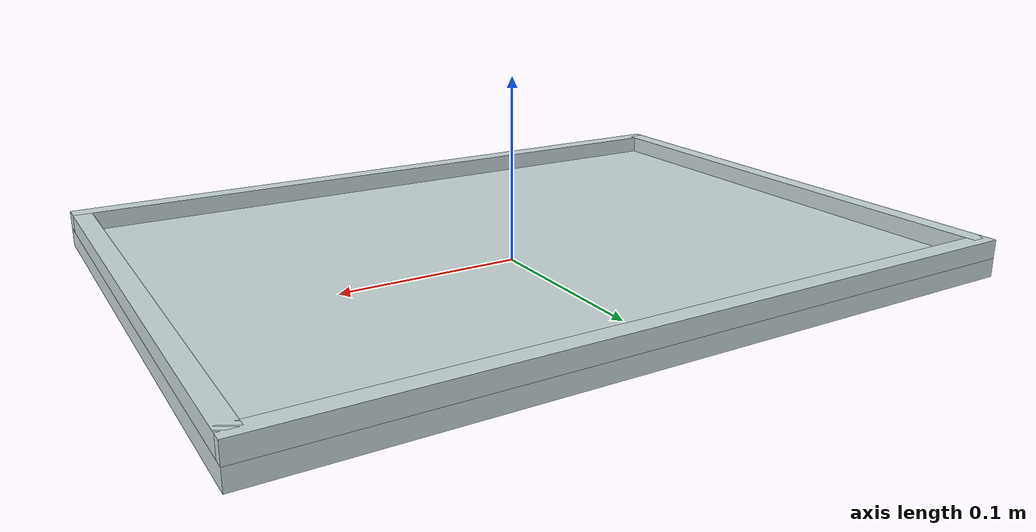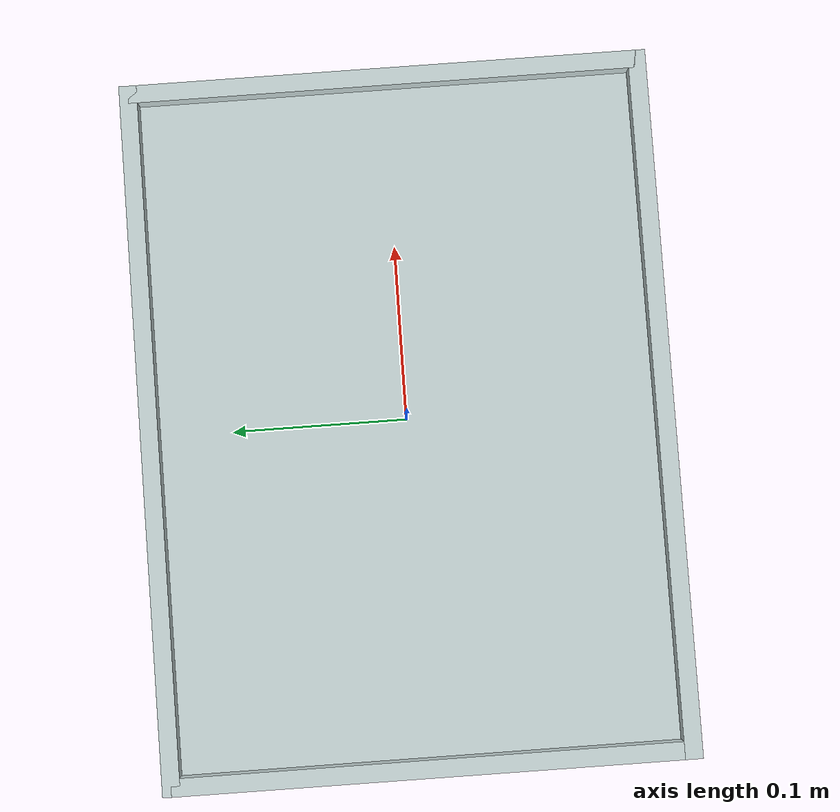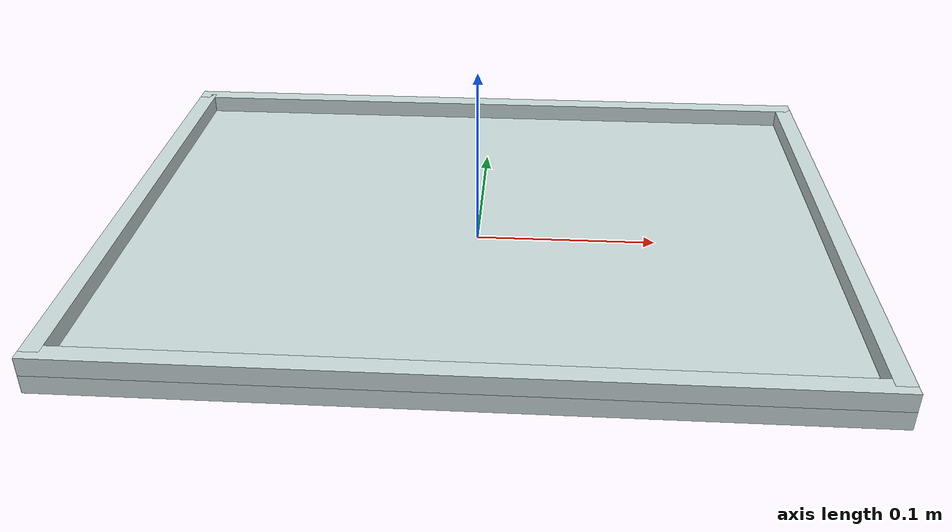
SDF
<?xml version='1.0'?>
<sdf version='1.7'>
  <model name='tray'>
    <link name='base_link'>
      <inertial>
        <mass>1</mass>
        <inertia>
          <ixx>0.166667</ixx>
          <ixy>0</ixy>
          <ixz>0</ixz>
          <iyy>0.166667</iyy>
          <iyz>0</iyz>
          <izz>0.166667</izz>
        </inertia>
        <pose>0 0 0 0 -0 0</pose>
      </inertial>
      <pose>0 0 0 0 -0 0</pose>
      <visual name='visual'>
        <pose>0 0 0.005 0 -0 0</pose>
        <geometry>
            <box>
                <size>0.4 0.3 0.01</size>
            </box>
        </geometry>
        <material>
          <diffuse>0.788 0.850 0.850 1</diffuse>
        </material>
      </visual>
      <collision name='collision'>
        <pose>0 0 0.005 0 -0 0</pose>
        <geometry>
          <box>
              <size>0.4 0.3 0.01</size>
          </box>
        </geometry>
      </collision>
      <visual name='visual_back'>
        <pose>0 0.145 0.015 0 -0 0</pose>
        <geometry>
            <box>
                <size>0.4 0.01 0.01</size>
            </box>
        </geometry>
        <material>
          <diffuse>0.788 0.850 0.850 1</diffuse>
        </material>
      </visual>
      <visual name='visual_front'>
        <pose>0 -0.145 0.015 0 -0 0</pose>
        <geometry>
            <box>
                <size>0.4 0.01 0.01</size>
            </box>
        </geometry>
        <material>
          <diffuse>0.788 0.850 0.850 1</diffuse>
        </material>
      </visual>
      <visual name='visual_left'>
        <pose>0.195 0 0.015 0 -0 0</pose>
        <geometry>
            <box>
                <size>0.01 0.29 0.01</size>
            </box>
        </geometry>
        <material>
          <diffuse>0.788 0.850 0.850 1</diffuse>
        </material>
      </visual>
      <visual name='visual_right'>
        <pose>-0.195 0 0.015 0 -0 0</pose>
        <geometry>
            <box>
                <size>0.01 0.29 0.01</size>
            </box>
        </geometry>
        <material>
          <diffuse>0.788 0.850 0.850 1</diffuse>
        </material>
      </visual>
    </link>
  </model>
</sdf>
